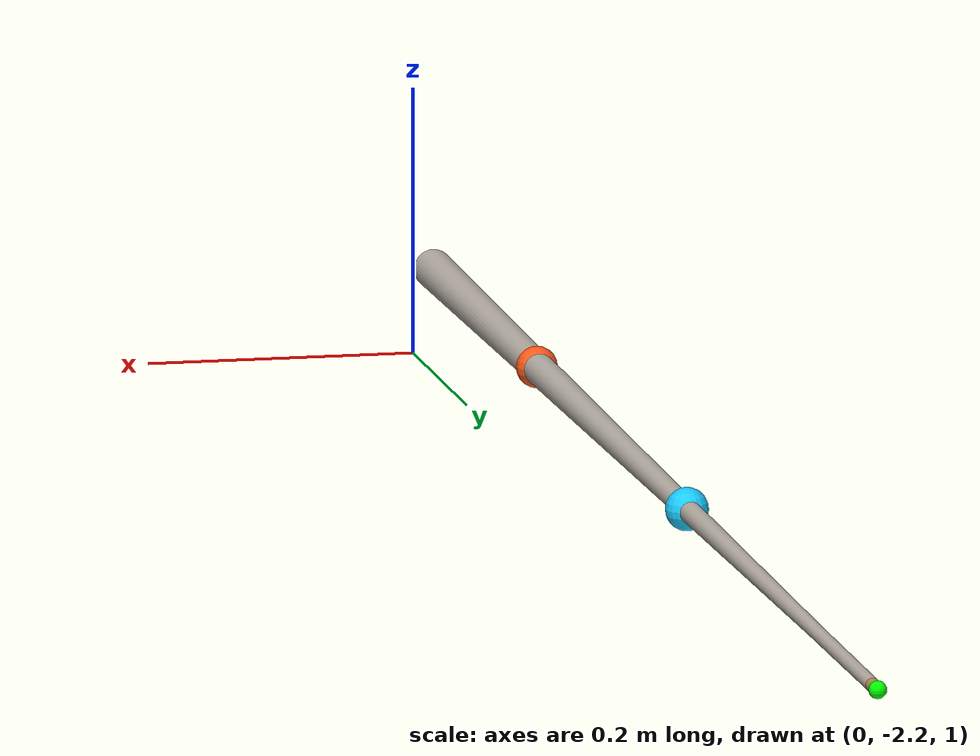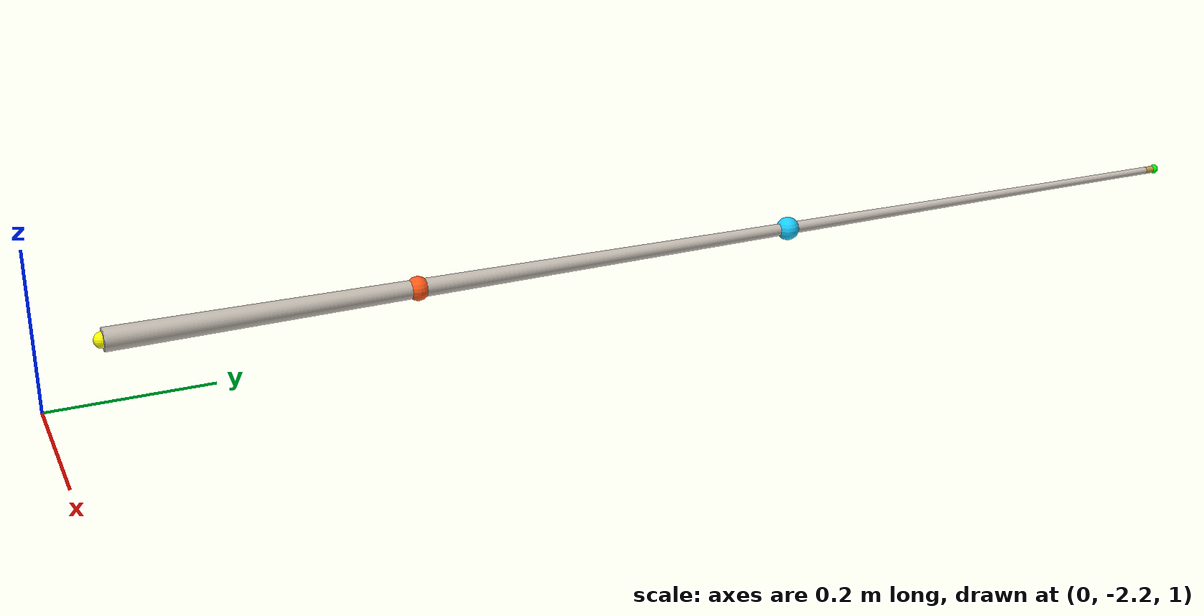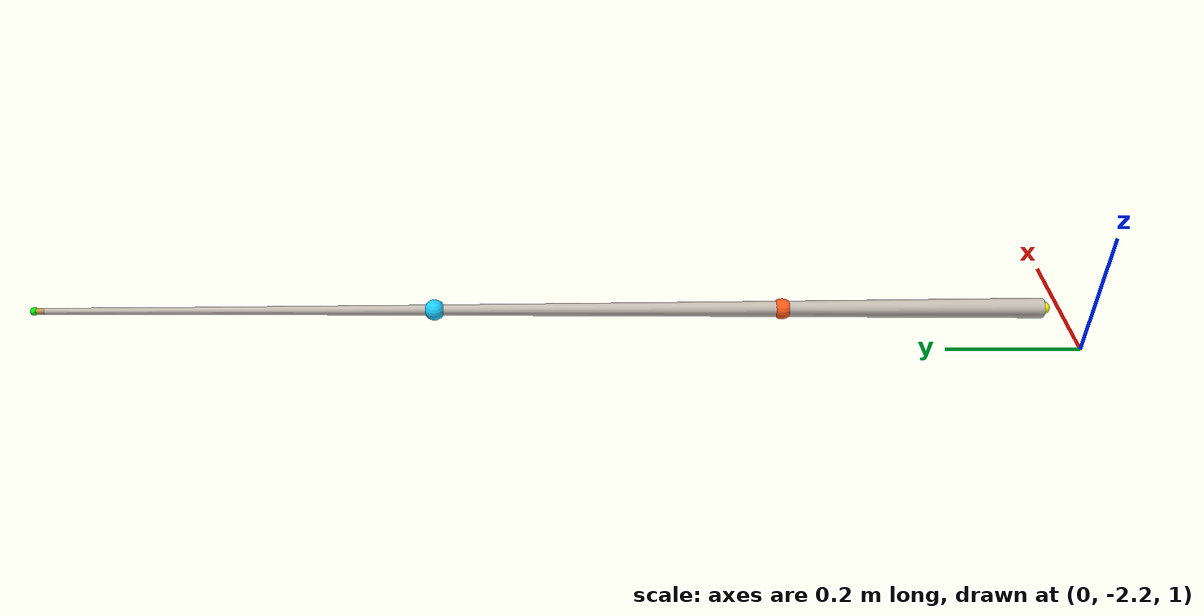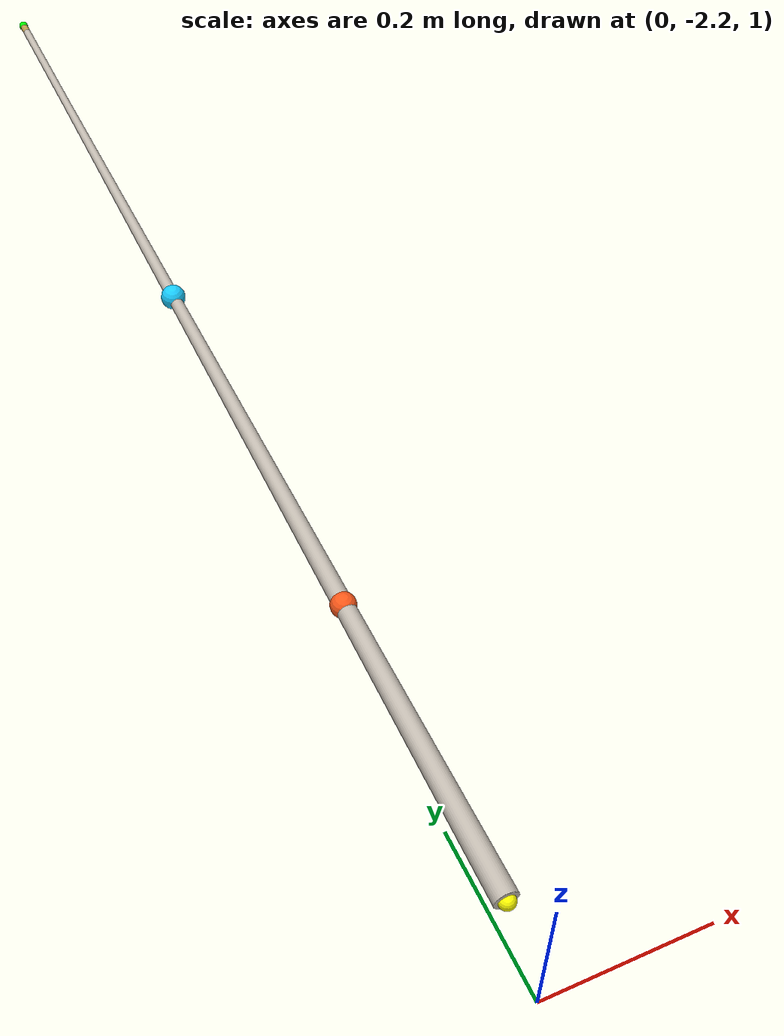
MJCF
<mujoco>
  <asset>
    <material name="dynamic_cue_wood_mat" rgba="0.72 0.43 0.20 1"/>
    <material name="dynamic_cue_tip_mat" rgba="0.03 0.03 0.028 1"/>
    <texture name="sketchfab_cue_texture" type="2d" file="../assets/cue/sketchfab_pool_table_traditional/cue_mat_baseColor.png"/>
    <material name="sketchfab_cue_mat" texture="sketchfab_cue_texture" rgba="1 1 1 1" reflectance="0.08"/>
    <mesh name="sketchfab_cue_visual" file="../assets/cue/sketchfab_pool_table_traditional/snooker_cue_shaft_visual.obj"/>
  </asset>

  <worldbody>
    <body name="cue_body" pos="0 -1.3996 1.0785" quat="0.7071067812 0 0 0.7071067812">
      <!-- Cue local +X points from butt to tip. Left hand site is closer to
           the cue ball; right hand site is farther back for the power stroke. -->
      <freejoint name="cue_free"/>
      <geom name="cue_visual_mesh" type="mesh" mesh="sketchfab_cue_visual"
            material="sketchfab_cue_mat" contype="0" conaffinity="0" density="0"/>
      <!-- Visual ferrule covers the rear tip cap. Its mass and clearance are
           represented by the front shaft; it adds neither mass nor contacts. -->
      <geom name="cue_ferrule_visual" type="cylinder" fromto="0.710 0 0 0.72475 0 0" size="0.00475"
            rgba="0.72 0.60 0.30 1" contype="0" conaffinity="0" density="0"/>
      <geom name="cue_shaft_butt" type="capsule" fromto="-0.7105 0 0 -0.30 0 0" size="0.0145"
            mass="0.28" material="dynamic_cue_wood_mat" rgba="0.72 0.43 0.20 0"
            contype="0" conaffinity="0" condim="3" friction="0 0 0"/>
      <geom name="cue_shaft_lower" type="capsule" fromto="-0.30 0 0 0.10 0 0" size="0.011"
            mass="0.15" material="dynamic_cue_wood_mat" rgba="0.72 0.43 0.20 0"
            contype="0" conaffinity="0" condim="3" friction="0 0 0"/>
      <geom name="cue_shaft_middle" type="capsule" fromto="0.10 0 0 0.40 0 0" size="0.008"
            mass="0.065" material="dynamic_cue_wood_mat" rgba="0.72 0.43 0.20 0"
            contype="0" conaffinity="0" condim="3" friction="0 0 0"/>
      <geom name="cue_shaft_upper" type="capsule" fromto="0.40 0 0 0.60 0 0" size="0.006"
            mass="0.025" material="dynamic_cue_wood_mat" rgba="0.72 0.43 0.20 0"
            contype="0" conaffinity="0" condim="3" friction="0 0 0"/>
      <geom name="cue_shaft" type="capsule" fromto="0.60 0 0 0.720 0 0" size="0.00475"
            mass="0.0095" material="dynamic_cue_wood_mat" rgba="0.72 0.43 0.20 0"
            contype="0" conaffinity="0" condim="3"
            friction="0 0 0"/>
      <geom name="cue_tip" type="capsule" fromto="0.72475 0 0 0.725 0 0" size="0.00475"
            mass="0.0005" material="dynamic_cue_tip_mat"
            contype="1" conaffinity="1" condim="6" priority="3"
            friction="0.35 0.008 0.0001" solref="-5e6 -300"
            solimp="0.95 0.99 0.001"/>
      <site name="cue_tip_site" pos="0.725 0 0" size="0.006" rgba="0 1 0 1"/>
      <site name="cue_axis_site" pos="0 0 0" size="0.004" rgba="0 0.4 1 1"/>
      <site name="cue_left_grip_site" pos="0.150333 0 0" size="0.015" rgba="0.1 0.8 1 1"/>
      <site name="cue_right_grip_site" pos="-0.349667 0 0" size="0.015" rgba="1 0.35 0.1 1"/>
      <site name="cue_back_site" pos="-0.725 0 0" size="0.010" rgba="1 1 0 1"/>
    </body>
  </worldbody>
</mujoco>
